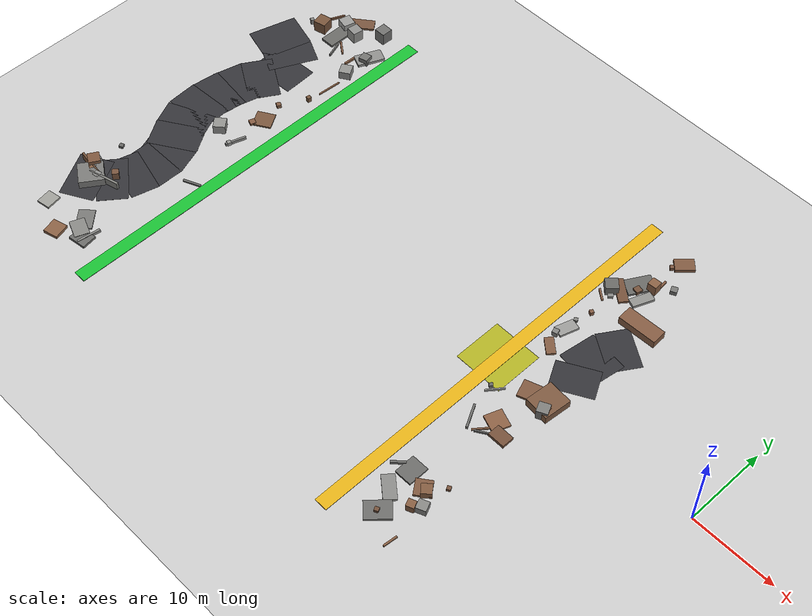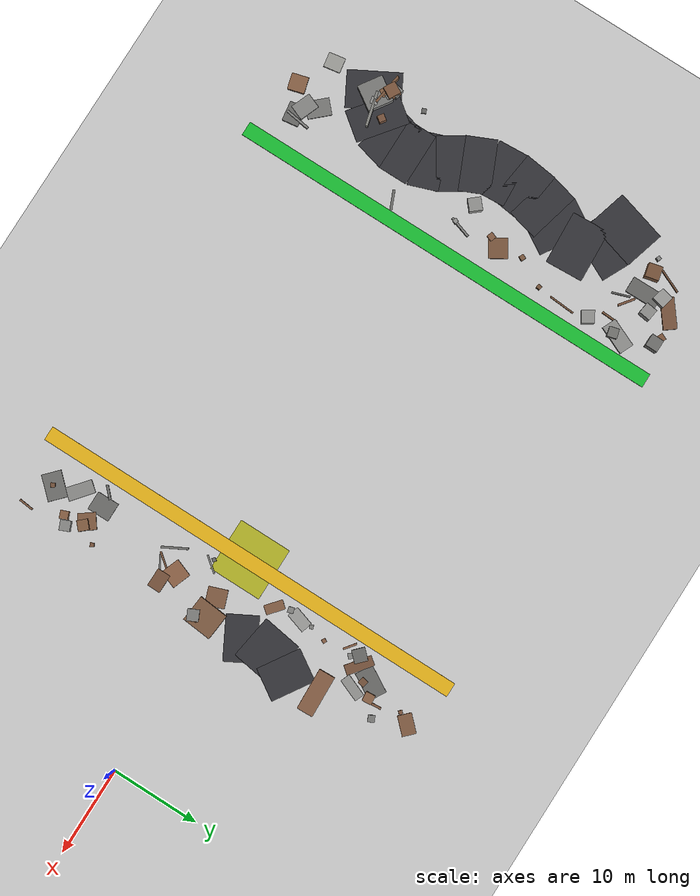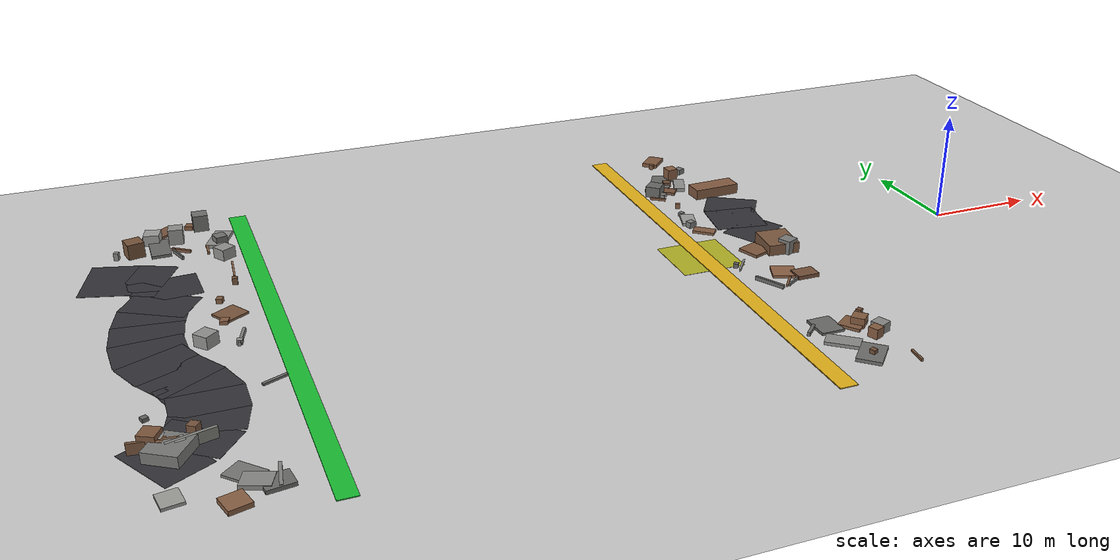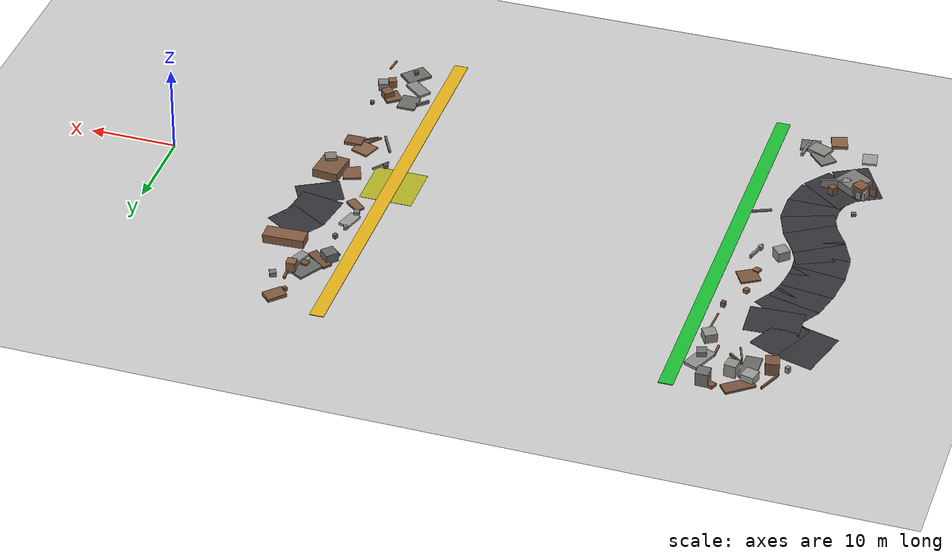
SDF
<sdf version="1.6">
 <world name="navitas_arena">
  <model name="ground_plane">
   <static>true</static>
   <link name="link">
    <collision name="collision">
     <geometry><plane><normal>0 0 1</normal><size>400 400</size></plane></geometry>
     <surface><friction><ode><mu>0.8</mu><mu2>0.8</mu2></ode></friction></surface>
    </collision>
    <visual name="visual">
     <cast_shadows>false</cast_shadows>
     <geometry><plane><normal>0 0 1</normal><size>400 400</size></plane></geometry>
     <material>
      <script><uri>file://media/materials/scripts/gazebo.material</uri><name>Gazebo/Grey</name></script>
     </material>
    </visual>
   </link>
  </model>
  <model name="launch">
   <static>true</static>
   <pose>-26.000 0.000 0.010 0 0 0.000</pose>
   <link name="link">
    <collision name="col"><geometry><box><size>6.000 6.000 0.020</size></box></geometry></collision>
    <visual name="vis">
     <geometry><box><size>6.000 6.000 0.020</size></box></geometry>
     <material><ambient>0.70 0.70 0.15 1</ambient><diffuse>0.70 0.70 0.15 1</diffuse></material>
    </visual>
   </link>
  </model>
  <model name="brd_kolay_E">
   <static>true</static>
   <pose>-64.200 0.000 0.040 0 0 0.000</pose>
   <link name="link">
    <collision name="col"><geometry><box><size>1.600 50.000 0.080</size></box></geometry></collision>
    <visual name="vis">
     <geometry><box><size>1.600 50.000 0.080</size></box></geometry>
     <material><ambient>0.10 0.75 0.20 1</ambient><diffuse>0.10 0.75 0.20 1</diffuse></material>
    </visual>
   </link>
  </model>
  <model name="road_kolay_3_7">
   <static>true</static>
   <pose>-74.937 -15.783 0.040 0 0 0.503</pose>
   <link name="link">
    <collision name="col"><geometry><box><size>4.146 6.000 0.020</size></box></geometry></collision>
    <visual name="vis">
     <geometry><box><size>4.146 6.000 0.020</size></box></geometry>
     <material><ambient>0.20 0.20 0.22 1</ambient><diffuse>0.20 0.20 0.22 1</diffuse></material>
    </visual>
   </link>
  </model>
  <model name="road_kolay_3_8">
   <static>true</static>
   <pose>-72.693 -13.926 0.040 0 0 0.917</pose>
   <link name="link">
    <collision name="col"><geometry><box><size>3.606 6.000 0.020</size></box></geometry></collision>
    <visual name="vis">
     <geometry><box><size>3.606 6.000 0.020</size></box></geometry>
     <material><ambient>0.20 0.20 0.22 1</ambient><diffuse>0.20 0.20 0.22 1</diffuse></material>
    </visual>
   </link>
  </model>
  <model name="road_kolay_3_9">
   <static>true</static>
   <pose>-71.559 -11.639 0.040 0 0 1.320</pose>
   <link name="link">
    <collision name="col"><geometry><box><size>3.404 6.000 0.020</size></box></geometry></collision>
    <visual name="vis">
     <geometry><box><size>3.404 6.000 0.020</size></box></geometry>
     <material><ambient>0.20 0.20 0.22 1</ambient><diffuse>0.20 0.20 0.22 1</diffuse></material>
    </visual>
   </link>
  </model>
  <model name="road_kolay_3_10">
   <static>true</static>
   <pose>-71.249 -9.213 0.040 0 0 1.572</pose>
   <link name="link">
    <collision name="col"><geometry><box><size>3.326 6.000 0.020</size></box></geometry></collision>
    <visual name="vis">
     <geometry><box><size>3.326 6.000 0.020</size></box></geometry>
     <material><ambient>0.20 0.20 0.22 1</ambient><diffuse>0.20 0.20 0.22 1</diffuse></material>
    </visual>
   </link>
  </model>
  <model name="road_kolay_3_11">
   <static>true</static>
   <pose>-71.670 -6.833 0.040 0 0 1.916</pose>
   <link name="link">
    <collision name="col"><geometry><box><size>3.380 6.000 0.020</size></box></geometry></collision>
    <visual name="vis">
     <geometry><box><size>3.380 6.000 0.020</size></box></geometry>
     <material><ambient>0.20 0.20 0.22 1</ambient><diffuse>0.20 0.20 0.22 1</diffuse></material>
    </visual>
   </link>
  </model>
  <model name="road_kolay_3_12">
   <static>true</static>
   <pose>-72.821 -4.500 0.040 0 0 2.131</pose>
   <link name="link">
    <collision name="col"><geometry><box><size>3.654 6.000 0.020</size></box></geometry></collision>
    <visual name="vis">
     <geometry><box><size>3.654 6.000 0.020</size></box></geometry>
     <material><ambient>0.20 0.20 0.22 1</ambient><diffuse>0.20 0.20 0.22 1</diffuse></material>
    </visual>
   </link>
  </model>
  <model name="road_kolay_3_13">
   <static>true</static>
   <pose>-74.075 -2.167 0.040 0 0 1.992</pose>
   <link name="link">
    <collision name="col"><geometry><box><size>3.457 6.000 0.020</size></box></geometry></collision>
    <visual name="vis">
     <geometry><box><size>3.457 6.000 0.020</size></box></geometry>
     <material><ambient>0.20 0.20 0.22 1</ambient><diffuse>0.20 0.20 0.22 1</diffuse></material>
    </visual>
   </link>
  </model>
  <model name="road_kolay_3_14">
   <static>true</static>
   <pose>-74.682 0.400 0.040 0 0 1.631</pose>
   <link name="link">
    <collision name="col"><geometry><box><size>3.705 6.000 0.020</size></box></geometry></collision>
    <visual name="vis">
     <geometry><box><size>3.705 6.000 0.020</size></box></geometry>
     <material><ambient>0.20 0.20 0.22 1</ambient><diffuse>0.20 0.20 0.22 1</diffuse></material>
    </visual>
   </link>
  </model>
  <model name="road_kolay_3_15">
   <static>true</static>
   <pose>-74.588 3.200 0.040 0 0 1.445</pose>
   <link name="link">
    <collision name="col"><geometry><box><size>3.722 6.000 0.020</size></box></geometry></collision>
    <visual name="vis">
     <geometry><box><size>3.722 6.000 0.020</size></box></geometry>
     <material><ambient>0.20 0.20 0.22 1</ambient><diffuse>0.20 0.20 0.22 1</diffuse></material>
    </visual>
   </link>
  </model>
  <model name="road_kolay_3_16">
   <static>true</static>
   <pose>-74.086 5.898 0.040 0 0 1.326</pose>
   <link name="link">
    <collision name="col"><geometry><box><size>3.575 6.000 0.020</size></box></geometry></collision>
    <visual name="vis">
     <geometry><box><size>3.575 6.000 0.020</size></box></geometry>
     <material><ambient>0.20 0.20 0.22 1</ambient><diffuse>0.20 0.20 0.22 1</diffuse></material>
    </visual>
   </link>
  </model>
  <model name="road_kolay_3_17">
   <static>true</static>
   <pose>-73.017 8.426 0.040 0 0 1.026</pose>
   <link name="link">
    <collision name="col"><geometry><box><size>3.776 6.000 0.020</size></box></geometry></collision>
    <visual name="vis">
     <geometry><box><size>3.776 6.000 0.020</size></box></geometry>
     <material><ambient>0.20 0.20 0.22 1</ambient><diffuse>0.20 0.20 0.22 1</diffuse></material>
    </visual>
   </link>
  </model>
  <model name="road_kolay_3_18">
   <static>true</static>
   <pose>-72.361 11.328 0.040 0 0 1.624</pose>
   <link name="link">
    <collision name="col"><geometry><box><size>4.248 6.000 0.020</size></box></geometry></collision>
    <visual name="vis">
     <geometry><box><size>4.248 6.000 0.020</size></box></geometry>
     <material><ambient>0.20 0.20 0.22 1</ambient><diffuse>0.20 0.20 0.22 1</diffuse></material>
    </visual>
   </link>
  </model>
  <model name="road_kolay_3_19">
   <static>true</static>
   <pose>-73.637 13.574 0.040 0 0 2.691</pose>
   <link name="link">
    <collision name="col"><geometry><box><size>3.538 6.000 0.020</size></box></geometry></collision>
    <visual name="vis">
     <geometry><box><size>3.538 6.000 0.020</size></box></geometry>
     <material><ambient>0.20 0.20 0.22 1</ambient><diffuse>0.20 0.20 0.22 1</diffuse></material>
    </visual>
   </link>
  </model>
  <model name="road_kolay_3_20">
   <static>true</static>
   <pose>-76.608 14.652 0.040 0 0 2.866</pose>
   <link name="link">
    <collision name="col"><geometry><box><size>4.607 6.000 0.020</size></box></geometry></collision>
    <visual name="vis">
     <geometry><box><size>4.607 6.000 0.020</size></box></geometry>
     <material><ambient>0.20 0.20 0.22 1</ambient><diffuse>0.20 0.20 0.22 1</diffuse></material>
    </visual>
   </link>
  </model>
  <model name="blk_kolay_3_0_0">
   <static>true</static>
   <pose>-73.838 -15.035 0.500 0 0 0.205</pose>
   <link name="link">
    <collision name="col"><geometry><box><size>0.788 0.788 1.000</size></box></geometry></collision>
    <visual name="vis">
     <geometry><box><size>0.788 0.788 1.000</size></box></geometry>
     <material><ambient>0.56 0.56 0.55 1</ambient><diffuse>0.56 0.56 0.55 1</diffuse></material>
    </visual>
   </link>
  </model>
  <model name="blk_kolay_3_0_1">
   <static>true</static>
   <pose>-72.996 -14.807 0.500 0 0 0.261</pose>
   <link name="link">
    <collision name="col"><geometry><box><size>3.860 0.278 1.000</size></box></geometry></collision>
    <visual name="vis">
     <geometry><box><size>3.860 0.278 1.000</size></box></geometry>
     <material><ambient>0.52 0.52 0.50 1</ambient><diffuse>0.52 0.52 0.50 1</diffuse></material>
    </visual>
   </link>
  </model>
  <model name="blk_kolay_3_0_2">
   <static>true</static>
   <pose>-75.254 -14.099 0.500 0 0 2.762</pose>
   <link name="link">
    <collision name="col"><geometry><box><size>0.913 0.913 1.000</size></box></geometry></collision>
    <visual name="vis">
     <geometry><box><size>0.913 0.913 1.000</size></box></geometry>
     <material><ambient>0.56 0.56 0.55 1</ambient><diffuse>0.56 0.56 0.55 1</diffuse></material>
    </visual>
   </link>
  </model>
  <model name="blk_kolay_3_0_3">
   <static>true</static>
   <pose>-75.709 -14.020 0.714 0 0 2.634</pose>
   <link name="link">
    <collision name="col"><geometry><box><size>1.386 1.386 1.427</size></box></geometry></collision>
    <visual name="vis">
     <geometry><box><size>1.386 1.386 1.427</size></box></geometry>
     <material><ambient>0.49 0.34 0.24 1</ambient><diffuse>0.49 0.34 0.24 1</diffuse></material>
    </visual>
   </link>
  </model>
  <model name="blk_kolay_3_0_4">
   <static>true</static>
   <pose>-75.965 -13.671 0.500 0 0 2.943</pose>
   <link name="link">
    <collision name="col"><geometry><box><size>1.092 1.092 1.000</size></box></geometry></collision>
    <visual name="vis">
     <geometry><box><size>1.092 1.092 1.000</size></box></geometry>
     <material><ambient>0.55 0.55 0.54 1</ambient><diffuse>0.55 0.55 0.54 1</diffuse></material>
    </visual>
   </link>
  </model>
  <model name="blk_kolay_3_0_5">
   <static>true</static>
   <pose>-75.603 -14.547 0.500 0 0 2.998</pose>
   <link name="link">
    <collision name="col"><geometry><box><size>3.623 0.254 1.000</size></box></geometry></collision>
    <visual name="vis">
     <geometry><box><size>3.623 0.254 1.000</size></box></geometry>
     <material><ambient>0.48 0.34 0.24 1</ambient><diffuse>0.48 0.34 0.24 1</diffuse></material>
    </visual>
   </link>
  </model>
  <model name="blk_kolay_3_0_6">
   <static>true</static>
   <pose>-72.684 -13.391 0.500 0 0 0.953</pose>
   <link name="link">
    <collision name="col"><geometry><box><size>0.763 0.763 1.000</size></box></geometry></collision>
    <visual name="vis">
     <geometry><box><size>0.763 0.763 1.000</size></box></geometry>
     <material><ambient>0.47 0.33 0.24 1</ambient><diffuse>0.47 0.33 0.24 1</diffuse></material>
    </visual>
   </link>
  </model>
  <model name="blk_kolay_3_0_7">
   <static>true</static>
   <pose>-75.221 -14.566 0.500 0 0 1.016</pose>
   <link name="link">
    <collision name="col"><geometry><box><size>0.922 0.922 1.000</size></box></geometry></collision>
    <visual name="vis">
     <geometry><box><size>0.922 0.922 1.000</size></box></geometry>
     <material><ambient>0.52 0.37 0.26 1</ambient><diffuse>0.52 0.37 0.26 1</diffuse></material>
    </visual>
   </link>
  </model>
  <model name="blk_kolay_3_0_8">
   <static>true</static>
   <pose>-74.566 -15.380 0.500 0 0 0.982</pose>
   <link name="link">
    <collision name="col"><geometry><box><size>2.954 2.875 1.000</size></box></geometry></collision>
    <visual name="vis">
     <geometry><box><size>2.954 2.875 1.000</size></box></geometry>
     <material><ambient>0.48 0.48 0.47 1</ambient><diffuse>0.48 0.48 0.47 1</diffuse></material>
    </visual>
   </link>
  </model>
  <model name="deb_kolay_5">
   <static>true</static>
   <pose>-74.207 19.503 0.728 0 0 1.801</pose>
   <link name="link">
    <collision name="col"><geometry><box><size>1.531 1.531 1.456</size></box></geometry></collision>
    <visual name="vis">
     <geometry><box><size>1.531 1.531 1.456</size></box></geometry>
     <material><ambient>0.47 0.33 0.23 1</ambient><diffuse>0.47 0.33 0.23 1</diffuse></material>
    </visual>
   </link>
  </model>
  <model name="deb_kolay_6">
   <static>true</static>
   <pose>-71.187 -22.927 0.197 0 0 0.267</pose>
   <link name="link">
    <collision name="col"><geometry><box><size>1.806 1.871 0.394</size></box></geometry></collision>
    <visual name="vis">
     <geometry><box><size>1.806 1.871 0.394</size></box></geometry>
     <material><ambient>0.54 0.38 0.27 1</ambient><diffuse>0.54 0.38 0.27 1</diffuse></material>
    </visual>
   </link>
  </model>
  <model name="deb_kolay_7">
   <static>true</static>
   <pose>-70.492 17.905 0.169 0 0 1.897</pose>
   <link name="link">
    <collision name="col"><geometry><box><size>2.029 0.163 0.337</size></box></geometry></collision>
    <visual name="vis">
     <geometry><box><size>2.029 0.163 0.337</size></box></geometry>
     <material><ambient>0.44 0.44 0.43 1</ambient><diffuse>0.44 0.44 0.43 1</diffuse></material>
    </visual>
   </link>
  </model>
  <model name="deb_kolay_8">
   <static>true</static>
   <pose>-68.208 7.054 0.217 0 0 1.133</pose>
   <link name="link">
    <collision name="col"><geometry><box><size>0.553 0.553 0.435</size></box></geometry></collision>
    <visual name="vis">
     <geometry><box><size>0.553 0.553 0.435</size></box></geometry>
     <material><ambient>0.49 0.35 0.25 1</ambient><diffuse>0.49 0.35 0.25 1</diffuse></material>
    </visual>
   </link>
  </model>
  <model name="deb_kolay_13">
   <static>true</static>
   <pose>-66.542 19.320 0.446 0 0 0.254</pose>
   <link name="link">
    <collision name="col"><geometry><box><size>1.090 1.090 0.893</size></box></geometry></collision>
    <visual name="vis">
     <geometry><box><size>1.090 1.090 0.893</size></box></geometry>
     <material><ambient>0.45 0.45 0.44 1</ambient><diffuse>0.45 0.45 0.44 1</diffuse></material>
    </visual>
   </link>
  </model>
  <model name="deb_kolay_18">
   <static>true</static>
   <pose>-68.824 23.923 0.188 0 0 1.166</pose>
   <link name="link">
    <collision name="col"><geometry><box><size>0.774 0.774 0.376</size></box></geometry></collision>
    <visual name="vis">
     <geometry><box><size>0.774 0.774 0.376</size></box></geometry>
     <material><ambient>0.49 0.34 0.24 1</ambient><diffuse>0.49 0.34 0.24 1</diffuse></material>
    </visual>
   </link>
  </model>
  <model name="deb_kolay_19">
   <static>true</static>
   <pose>-70.139 18.821 0.142 0 0 2.497</pose>
   <link name="link">
    <collision name="col"><geometry><box><size>1.940 0.228 0.285</size></box></geometry></collision>
    <visual name="vis">
     <geometry><box><size>1.940 0.228 0.285</size></box></geometry>
     <material><ambient>0.48 0.33 0.24 1</ambient><diffuse>0.48 0.33 0.24 1</diffuse></material>
    </visual>
   </link>
  </model>
  <model name="deb_kolay_20">
   <static>true</static>
   <pose>-67.888 -20.878 0.186 0 0 1.432</pose>
   <link name="link">
    <collision name="col"><geometry><box><size>2.813 0.264 0.373</size></box></geometry></collision>
    <visual name="vis">
     <geometry><box><size>2.813 0.264 0.373</size></box></geometry>
     <material><ambient>0.51 0.51 0.50 1</ambient><diffuse>0.51 0.51 0.50 1</diffuse></material>
    </visual>
   </link>
  </model>
  <model name="deb_kolay_21">
   <static>true</static>
   <pose>-71.966 19.873 0.139 0 0 1.580</pose>
   <link name="link">
    <collision name="col"><geometry><box><size>3.562 1.773 0.277</size></box></geometry></collision>
    <visual name="vis">
     <geometry><box><size>3.562 1.773 0.277</size></box></geometry>
     <material><ambient>0.41 0.41 0.40 1</ambient><diffuse>0.41 0.41 0.40 1</diffuse></material>
    </visual>
   </link>
  </model>
  <model name="deb_kolay_27">
   <static>true</static>
   <pose>-75.869 -10.089 0.157 0 0 0.392</pose>
   <link name="link">
    <collision name="col"><geometry><box><size>0.514 0.514 0.315</size></box></geometry></collision>
    <visual name="vis">
     <geometry><box><size>0.514 0.514 0.315</size></box></geometry>
     <material><ambient>0.40 0.40 0.39 1</ambient><diffuse>0.40 0.40 0.39 1</diffuse></material>
    </visual>
   </link>
  </model>
  <model name="deb_kolay_29">
   <static>true</static>
   <pose>-75.165 -20.884 0.119 0 0 1.736</pose>
   <link name="link">
    <collision name="col"><geometry><box><size>1.874 1.654 0.238</size></box></geometry></collision>
    <visual name="vis">
     <geometry><box><size>1.874 1.654 0.238</size></box></geometry>
     <material><ambient>0.62 0.62 0.60 1</ambient><diffuse>0.62 0.62 0.60 1</diffuse></material>
    </visual>
   </link>
  </model>
  <model name="deb_kolay_36">
   <static>true</static>
   <pose>-66.058 -7.818 0.098 0 0 0.410</pose>
   <link name="link">
    <collision name="col"><geometry><box><size>2.199 0.276 0.196</size></box></geometry></collision>
    <visual name="vis">
     <geometry><box><size>2.199 0.276 0.196</size></box></geometry>
     <material><ambient>0.42 0.42 0.41 1</ambient><diffuse>0.42 0.42 0.41 1</diffuse></material>
    </visual>
   </link>
  </model>
  <model name="deb_kolay_38">
   <static>true</static>
   <pose>-70.206 -0.154 0.564 0 0 2.281</pose>
   <link name="link">
    <collision name="col"><geometry><box><size>1.434 1.434 1.127</size></box></geometry></collision>
    <visual name="vis">
     <geometry><box><size>1.434 1.434 1.127</size></box></geometry>
     <material><ambient>0.57 0.57 0.56 1</ambient><diffuse>0.57 0.57 0.56 1</diffuse></material>
    </visual>
   </link>
  </model>
  <model name="deb_kolay_43">
   <static>true</static>
   <pose>-71.504 23.188 0.131 0 0 0.661</pose>
   <link name="link">
    <collision name="col"><geometry><box><size>3.464 1.496 0.263</size></box></geometry></collision>
    <visual name="vis">
     <geometry><box><size>3.464 1.496 0.263</size></box></geometry>
     <material><ambient>0.47 0.33 0.24 1</ambient><diffuse>0.47 0.33 0.24 1</diffuse></material>
    </visual>
   </link>
  </model>
  <model name="deb_kolay_46">
   <static>true</static>
   <pose>-66.539 19.964 0.170 0 0 1.161</pose>
   <link name="link">
    <collision name="col"><geometry><box><size>3.317 1.645 0.341</size></box></geometry></collision>
    <visual name="vis">
     <geometry><box><size>3.317 1.645 0.341</size></box></geometry>
     <material><ambient>0.56 0.56 0.55 1</ambient><diffuse>0.56 0.56 0.55 1</diffuse></material>
    </visual>
   </link>
  </model>
  <model name="deb_kolay_49">
   <static>true</static>
   <pose>-67.830 18.134 0.146 0 0 1.523</pose>
   <link name="link">
    <collision name="col"><geometry><box><size>1.780 0.207 0.292</size></box></geometry></collision>
    <visual name="vis">
     <geometry><box><size>1.780 0.207 0.292</size></box></geometry>
     <material><ambient>0.51 0.36 0.25 1</ambient><diffuse>0.51 0.36 0.25 1</diffuse></material>
    </visual>
   </link>
  </model>
  <model name="deb_kolay_53">
   <static>true</static>
   <pose>-67.701 -0.969 0.223 0 0 2.846</pose>
   <link name="link">
    <collision name="col"><geometry><box><size>0.471 0.471 0.447</size></box></geometry></collision>
    <visual name="vis">
     <geometry><box><size>0.471 0.471 0.447</size></box></geometry>
     <material><ambient>0.57 0.57 0.56 1</ambient><diffuse>0.57 0.57 0.56 1</diffuse></material>
    </visual>
   </link>
  </model>
  <model name="deb_kolay_57">
   <static>true</static>
   <pose>-67.423 -0.211 0.193 0 0 1.261</pose>
   <link name="link">
    <collision name="col"><geometry><box><size>2.528 0.246 0.386</size></box></geometry></collision>
    <visual name="vis">
     <geometry><box><size>2.528 0.246 0.386</size></box></geometry>
     <material><ambient>0.50 0.50 0.49 1</ambient><diffuse>0.50 0.50 0.49 1</diffuse></material>
    </visual>
   </link>
  </model>
  <model name="deb_kolay_71">
   <static>true</static>
   <pose>-66.481 10.207 0.315 0 0 1.411</pose>
   <link name="link">
    <collision name="col"><geometry><box><size>0.471 0.471 0.630</size></box></geometry></collision>
    <visual name="vis">
     <geometry><box><size>0.471 0.471 0.630</size></box></geometry>
     <material><ambient>0.46 0.33 0.23 1</ambient><diffuse>0.46 0.33 0.23 1</diffuse></material>
    </visual>
   </link>
  </model>
  <model name="deb_kolay_74">
   <static>true</static>
   <pose>-67.827 23.547 0.791 0 0 3.130</pose>
   <link name="link">
    <collision name="col"><geometry><box><size>1.396 1.396 1.581</size></box></geometry></collision>
    <visual name="vis">
     <geometry><box><size>1.396 1.396 1.581</size></box></geometry>
     <material><ambient>0.44 0.44 0.43 1</ambient><diffuse>0.44 0.44 0.43 1</diffuse></material>
    </visual>
   </link>
  </model>
  <model name="deb_kolay_77">
   <static>true</static>
   <pose>-66.548 16.197 0.522 0 0 2.125</pose>
   <link name="link">
    <collision name="col"><geometry><box><size>1.394 1.394 1.045</size></box></geometry></collision>
    <visual name="vis">
     <geometry><box><size>1.394 1.394 1.045</size></box></geometry>
     <material><ambient>0.57 0.57 0.56 1</ambient><diffuse>0.57 0.57 0.56 1</diffuse></material>
    </visual>
   </link>
  </model>
  <model name="deb_kolay_78">
   <static>true</static>
   <pose>-70.305 21.223 0.738 0 0 1.436</pose>
   <link name="link">
    <collision name="col"><geometry><box><size>1.316 1.316 1.476</size></box></geometry></collision>
    <visual name="vis">
     <geometry><box><size>1.316 1.316 1.476</size></box></geometry>
     <material><ambient>0.56 0.56 0.55 1</ambient><diffuse>0.56 0.56 0.55 1</diffuse></material>
    </visual>
   </link>
  </model>
  <model name="deb_kolay_81">
   <static>true</static>
   <pose>-67.722 4.360 0.104 0 0 0.545</pose>
   <link name="link">
    <collision name="col"><geometry><box><size>2.228 2.088 0.209</size></box></geometry></collision>
    <visual name="vis">
     <geometry><box><size>2.228 2.088 0.209</size></box></geometry>
     <material><ambient>0.48 0.34 0.24 1</ambient><diffuse>0.48 0.34 0.24 1</diffuse></material>
    </visual>
   </link>
  </model>
  <model name="deb_kolay_82">
   <static>true</static>
   <pose>-68.351 3.120 0.157 0 0 1.221</pose>
   <link name="link">
    <collision name="col"><geometry><box><size>0.717 0.717 0.315</size></box></geometry></collision>
    <visual name="vis">
     <geometry><box><size>0.717 0.717 0.315</size></box></geometry>
     <material><ambient>0.52 0.36 0.26 1</ambient><diffuse>0.52 0.36 0.26 1</diffuse></material>
    </visual>
   </link>
  </model>
  <model name="deb_kolay_87">
   <static>true</static>
   <pose>-70.098 -19.684 0.105 0 0 2.315</pose>
   <link name="link">
    <collision name="col"><geometry><box><size>2.614 1.897 0.211</size></box></geometry></collision>
    <visual name="vis">
     <geometry><box><size>2.614 1.897 0.211</size></box></geometry>
     <material><ambient>0.47 0.47 0.46 1</ambient><diffuse>0.47 0.47 0.46 1</diffuse></material>
    </visual>
   </link>
  </model>
  <model name="deb_kolay_92">
   <static>true</static>
   <pose>-74.462 21.505 0.137 0 0 1.155</pose>
   <link name="link">
    <collision name="col"><geometry><box><size>2.868 0.192 0.274</size></box></geometry></collision>
    <visual name="vis">
     <geometry><box><size>2.868 0.192 0.274</size></box></geometry>
     <material><ambient>0.46 0.32 0.23 1</ambient><diffuse>0.46 0.32 0.23 1</diffuse></material>
    </visual>
   </link>
  </model>
  <model name="deb_kolay_101">
   <static>true</static>
   <pose>-75.808 19.217 0.341 0 0 2.766</pose>
   <link name="link">
    <collision name="col"><geometry><box><size>0.438 0.438 0.683</size></box></geometry></collision>
    <visual name="vis">
     <geometry><box><size>0.438 0.438 0.683</size></box></geometry>
     <material><ambient>0.53 0.53 0.52 1</ambient><diffuse>0.53 0.53 0.52 1</diffuse></material>
    </visual>
   </link>
  </model>
  <model name="deb_kolay_102">
   <static>true</static>
   <pose>-68.207 -21.526 0.159 0 0 0.138</pose>
   <link name="link">
    <collision name="col"><geometry><box><size>2.215 1.824 0.319</size></box></geometry></collision>
    <visual name="vis">
     <geometry><box><size>2.215 1.824 0.319</size></box></geometry>
     <material><ambient>0.42 0.42 0.41 1</ambient><diffuse>0.42 0.42 0.41 1</diffuse></material>
    </visual>
   </link>
  </model>
  <model name="deb_kolay_104">
   <static>true</static>
   <pose>-72.403 21.788 0.518 0 0 2.900</pose>
   <link name="link">
    <collision name="col"><geometry><box><size>1.461 1.461 1.037</size></box></geometry></collision>
    <visual name="vis">
     <geometry><box><size>1.461 1.461 1.037</size></box></geometry>
     <material><ambient>0.61 0.61 0.60 1</ambient><diffuse>0.61 0.61 0.60 1</diffuse></material>
    </visual>
   </link>
  </model>
  <model name="deb_kolay_109">
   <static>true</static>
   <pose>-66.234 13.218 0.082 0 0 1.502</pose>
   <link name="link">
    <collision name="col"><geometry><box><size>2.969 0.167 0.164</size></box></geometry></collision>
    <visual name="vis">
     <geometry><box><size>2.969 0.167 0.164</size></box></geometry>
     <material><ambient>0.54 0.38 0.27 1</ambient><diffuse>0.54 0.38 0.27 1</diffuse></material>
    </visual>
   </link>
  </model>
  <model name="deb_kolay_113">
   <static>true</static>
   <pose>-69.459 -20.953 0.188 0 0 2.765</pose>
   <link name="link">
    <collision name="col"><geometry><box><size>2.299 1.735 0.376</size></box></geometry></collision>
    <visual name="vis">
     <geometry><box><size>2.299 1.735 0.376</size></box></geometry>
     <material><ambient>0.53 0.53 0.52 1</ambient><diffuse>0.53 0.53 0.52 1</diffuse></material>
    </visual>
   </link>
  </model>
  <model name="brd_orta_W">
   <static>true</static>
   <pose>-25.800 0.000 0.040 0 0 0.000</pose>
   <link name="link">
    <collision name="col"><geometry><box><size>1.600 50.000 0.080</size></box></geometry></collision>
    <visual name="vis">
     <geometry><box><size>1.600 50.000 0.080</size></box></geometry>
     <material><ambient>0.90 0.70 0.10 1</ambient><diffuse>0.90 0.70 0.10 1</diffuse></material>
    </visual>
   </link>
  </model>
  <model name="road_orta_1_12">
   <static>true</static>
   <pose>-18.578 3.667 0.040 0 0 2.070</pose>
   <link name="link">
    <collision name="col"><geometry><box><size>3.557 5.000 0.020</size></box></geometry></collision>
    <visual name="vis">
     <geometry><box><size>3.557 5.000 0.020</size></box></geometry>
     <material><ambient>0.20 0.20 0.22 1</ambient><diffuse>0.20 0.20 0.22 1</diffuse></material>
    </visual>
   </link>
  </model>
  <model name="road_orta_1_13">
   <static>true</static>
   <pose>-18.942 6.630 0.040 0 0 1.421</pose>
   <link name="link">
    <collision name="col"><geometry><box><size>4.533 5.000 0.020</size></box></geometry></collision>
    <visual name="vis">
     <geometry><box><size>4.533 5.000 0.020</size></box></geometry>
     <material><ambient>0.20 0.20 0.22 1</ambient><diffuse>0.20 0.20 0.22 1</diffuse></material>
    </visual>
   </link>
  </model>
  <model name="road_orta_1_14">
   <static>true</static>
   <pose>-17.895 9.639 0.040 0 0 1.002</pose>
   <link name="link">
    <collision name="col"><geometry><box><size>3.780 5.000 0.020</size></box></geometry></collision>
    <visual name="vis">
     <geometry><box><size>3.780 5.000 0.020</size></box></geometry>
     <material><ambient>0.20 0.20 0.22 1</ambient><diffuse>0.20 0.20 0.22 1</diffuse></material>
    </visual>
   </link>
  </model>
  <model name="blk_orta_1_1_0">
   <static>true</static>
   <pose>-17.917 -1.648 0.500 0 0 1.641</pose>
   <link name="link">
    <collision name="col"><geometry><box><size>0.950 0.950 1.000</size></box></geometry></collision>
    <visual name="vis">
     <geometry><box><size>0.950 0.950 1.000</size></box></geometry>
     <material><ambient>0.47 0.33 0.23 1</ambient><diffuse>0.47 0.33 0.23 1</diffuse></material>
    </visual>
   </link>
  </model>
  <model name="blk_orta_1_1_2">
   <static>true</static>
   <pose>-17.980 -1.827 0.658 0 0 2.017</pose>
   <link name="link">
    <collision name="col"><geometry><box><size>1.278 1.278 1.316</size></box></geometry></collision>
    <visual name="vis">
     <geometry><box><size>1.278 1.278 1.316</size></box></geometry>
     <material><ambient>0.49 0.49 0.48 1</ambient><diffuse>0.49 0.49 0.48 1</diffuse></material>
    </visual>
   </link>
  </model>
  <model name="blk_orta_1_1_5">
   <static>true</static>
   <pose>-18.408 -0.643 0.500 0 0 1.478</pose>
   <link name="link">
    <collision name="col"><geometry><box><size>3.350 2.975 1.000</size></box></geometry></collision>
    <visual name="vis">
     <geometry><box><size>3.350 2.975 1.000</size></box></geometry>
     <material><ambient>0.49 0.35 0.25 1</ambient><diffuse>0.49 0.35 0.25 1</diffuse></material>
    </visual>
   </link>
  </model>
  <model name="blk_orta_1_2_3">
   <static>true</static>
   <pose>-18.047 13.283 0.500 0 0 0.040</pose>
   <link name="link">
    <collision name="col"><geometry><box><size>4.666 1.830 1.000</size></box></geometry></collision>
    <visual name="vis">
     <geometry><box><size>4.666 1.830 1.000</size></box></geometry>
     <material><ambient>0.52 0.36 0.26 1</ambient><diffuse>0.52 0.36 0.26 1</diffuse></material>
    </visual>
   </link>
  </model>
  <model name="deb_orta_1">
   <static>true</static>
   <pose>-19.046 -6.836 0.182 0 0 3.137</pose>
   <link name="link">
    <collision name="col"><geometry><box><size>2.072 1.485 0.363</size></box></geometry></collision>
    <visual name="vis">
     <geometry><box><size>2.072 1.485 0.363</size></box></geometry>
     <material><ambient>0.46 0.32 0.23 1</ambient><diffuse>0.46 0.32 0.23 1</diffuse></material>
    </visual>
   </link>
  </model>
  <model name="deb_orta_2">
   <static>true</static>
   <pose>-20.847 -7.266 0.096 0 0 0.897</pose>
   <link name="link">
    <collision name="col"><geometry><box><size>2.711 0.184 0.191</size></box></geometry></collision>
    <visual name="vis">
     <geometry><box><size>2.711 0.184 0.191</size></box></geometry>
     <material><ambient>0.50 0.35 0.25 1</ambient><diffuse>0.50 0.35 0.25 1</diffuse></material>
    </visual>
   </link>
  </model>
  <model name="deb_orta_3">
   <static>true</static>
   <pose>-23.198 14.287 0.165 0 0 2.257</pose>
   <link name="link">
    <collision name="col"><geometry><box><size>0.589 0.589 0.329</size></box></geometry></collision>
    <visual name="vis">
     <geometry><box><size>0.589 0.589 0.329</size></box></geometry>
     <material><ambient>0.52 0.52 0.51 1</ambient><diffuse>0.52 0.52 0.51 1</diffuse></material>
    </visual>
   </link>
  </model>
  <model name="deb_orta_10">
   <static>true</static>
   <pose>-22.557 -18.888 0.144 0 0 2.458</pose>
   <link name="link">
    <collision name="col"><geometry><box><size>2.915 1.461 0.289</size></box></geometry></collision>
    <visual name="vis">
     <geometry><box><size>2.915 1.461 0.289</size></box></geometry>
     <material><ambient>0.54 0.54 0.53 1</ambient><diffuse>0.54 0.54 0.53 1</diffuse></material>
    </visual>
   </link>
  </model>
  <model name="deb_orta_22">
   <static>true</static>
   <pose>-20.335 23.032 0.200 0 0 0.799</pose>
   <link name="link">
    <collision name="col"><geometry><box><size>2.226 1.541 0.399</size></box></geometry></collision>
    <visual name="vis">
     <geometry><box><size>2.226 1.541 0.399</size></box></geometry>
     <material><ambient>0.50 0.35 0.25 1</ambient><diffuse>0.50 0.35 0.25 1</diffuse></material>
    </visual>
   </link>
  </model>
  <model name="deb_orta_23">
   <static>true</static>
   <pose>-19.653 -16.620 0.434 0 0 0.740</pose>
   <link name="link">
    <collision name="col"><geometry><box><size>1.181 1.181 0.868</size></box></geometry></collision>
    <visual name="vis">
     <geometry><box><size>1.181 1.181 0.868</size></box></geometry>
     <material><ambient>0.51 0.36 0.25 1</ambient><diffuse>0.51 0.36 0.25 1</diffuse></material>
    </visual>
   </link>
  </model>
  <model name="deb_orta_26">
   <static>true</static>
   <pose>-23.763 15.032 0.550 0 0 0.805</pose>
   <link name="link">
    <collision name="col"><geometry><box><size>1.460 1.460 1.100</size></box></geometry></collision>
    <visual name="vis">
     <geometry><box><size>1.460 1.460 1.100</size></box></geometry>
     <material><ambient>0.41 0.41 0.40 1</ambient><diffuse>0.41 0.41 0.40 1</diffuse></material>
    </visual>
   </link>
  </model>
  <model name="deb_orta_27">
   <static>true</static>
   <pose>-23.524 7.770 0.141 0 0 1.270</pose>
   <link name="link">
    <collision name="col"><geometry><box><size>2.291 1.314 0.283</size></box></geometry></collision>
    <visual name="vis">
     <geometry><box><size>2.291 1.314 0.283</size></box></geometry>
     <material><ambient>0.61 0.61 0.60 1</ambient><diffuse>0.61 0.61 0.60 1</diffuse></material>
    </visual>
   </link>
  </model>
  <model name="deb_orta_29">
   <static>true</static>
   <pose>-20.556 18.187 0.662 0 0 1.650</pose>
   <link name="link">
    <collision name="col"><geometry><box><size>1.052 1.052 1.324</size></box></geometry></collision>
    <visual name="vis">
     <geometry><box><size>1.052 1.052 1.324</size></box></geometry>
     <material><ambient>0.54 0.38 0.27 1</ambient><diffuse>0.54 0.38 0.27 1</diffuse></material>
    </visual>
   </link>
  </model>
  <model name="deb_orta_31">
   <static>true</static>
   <pose>-18.884 19.571 0.269 0 0 2.016</pose>
   <link name="link">
    <collision name="col"><geometry><box><size>0.742 0.742 0.539</size></box></geometry></collision>
    <visual name="vis">
     <geometry><box><size>0.742 0.742 0.539</size></box></geometry>
     <material><ambient>0.47 0.47 0.46 1</ambient><diffuse>0.47 0.47 0.46 1</diffuse></material>
    </visual>
   </link>
  </model>
  <model name="deb_orta_34">
   <static>true</static>
   <pose>-20.501 16.197 0.174 0 0 1.192</pose>
   <link name="link">
    <collision name="col"><geometry><box><size>2.596 1.090 0.347</size></box></geometry></collision>
    <visual name="vis">
     <geometry><box><size>2.596 1.090 0.347</size></box></geometry>
     <material><ambient>0.57 0.57 0.56 1</ambient><diffuse>0.57 0.57 0.56 1</diffuse></material>
    </visual>
   </link>
  </model>
  <model name="deb_orta_57">
   <static>true</static>
   <pose>-21.060 21.797 0.238 0 0 2.379</pose>
   <link name="link">
    <collision name="col"><geometry><box><size>0.424 0.424 0.476</size></box></geometry></collision>
    <visual name="vis">
     <geometry><box><size>0.424 0.424 0.476</size></box></geometry>
     <material><ambient>0.48 0.33 0.24 1</ambient><diffuse>0.48 0.33 0.24 1</diffuse></material>
    </visual>
   </link>
  </model>
  <model name="deb_orta_63">
   <static>true</static>
   <pose>-21.496 -21.428 0.152 0 0 0.826</pose>
   <link name="link">
    <collision name="col"><geometry><box><size>2.914 2.130 0.304</size></box></geometry></collision>
    <visual name="vis">
     <geometry><box><size>2.914 2.130 0.304</size></box></geometry>
     <material><ambient>0.43 0.43 0.42 1</ambient><diffuse>0.43 0.43 0.42 1</diffuse></material>
    </visual>
   </link>
  </model>
  <model name="deb_orta_67">
   <static>true</static>
   <pose>-20.596 -5.741 0.111 0 0 1.218</pose>
   <link name="link">
    <collision name="col"><geometry><box><size>2.088 2.165 0.222</size></box></geometry></collision>
    <visual name="vis">
     <geometry><box><size>2.088 2.165 0.222</size></box></geometry>
     <material><ambient>0.55 0.38 0.27 1</ambient><diffuse>0.55 0.38 0.27 1</diffuse></material>
    </visual>
   </link>
  </model>
  <model name="deb_orta_72">
   <static>true</static>
   <pose>-23.541 9.200 0.194 0 0 0.468</pose>
   <link name="link">
    <collision name="col"><geometry><box><size>0.439 0.439 0.388</size></box></geometry></collision>
    <visual name="vis">
     <geometry><box><size>0.439 0.439 0.388</size></box></geometry>
     <material><ambient>0.49 0.49 0.48 1</ambient><diffuse>0.49 0.49 0.48 1</diffuse></material>
    </visual>
   </link>
  </model>
  <model name="deb_orta_73">
   <static>true</static>
   <pose>-20.224 19.100 0.177 0 0 1.648</pose>
   <link name="link">
    <collision name="col"><geometry><box><size>1.524 0.244 0.354</size></box></geometry></collision>
    <visual name="vis">
     <geometry><box><size>1.524 0.244 0.354</size></box></geometry>
     <material><ambient>0.51 0.35 0.25 1</ambient><diffuse>0.51 0.35 0.25 1</diffuse></material>
    </visual>
   </link>
  </model>
  <model name="deb_orta_76">
   <static>true</static>
   <pose>-20.186 -16.516 0.132 0 0 0.639</pose>
   <link name="link">
    <collision name="col"><geometry><box><size>1.855 1.921 0.265</size></box></geometry></collision>
    <visual name="vis">
     <geometry><box><size>1.855 1.921 0.265</size></box></geometry>
     <material><ambient>0.50 0.35 0.25 1</ambient><diffuse>0.50 0.35 0.25 1</diffuse></material>
    </visual>
   </link>
  </model>
  <model name="deb_orta_81">
   <static>true</static>
   <pose>-23.994 13.684 0.116 0 0 2.493</pose>
   <link name="link">
    <collision name="col"><geometry><box><size>1.527 0.217 0.233</size></box></geometry></collision>
    <visual name="vis">
     <geometry><box><size>1.527 0.217 0.233</size></box></geometry>
     <material><ambient>0.52 0.36 0.26 1</ambient><diffuse>0.52 0.36 0.26 1</diffuse></material>
    </visual>
   </link>
  </model>
  <model name="deb_orta_89">
   <static>true</static>
   <pose>-21.480 -21.576 0.323 0 0 0.428</pose>
   <link name="link">
    <collision name="col"><geometry><box><size>0.488 0.488 0.647</size></box></geometry></collision>
    <visual name="vis">
     <geometry><box><size>0.488 0.488 0.647</size></box></geometry>
     <material><ambient>0.45 0.32 0.23 1</ambient><diffuse>0.45 0.32 0.23 1</diffuse></material>
    </visual>
   </link>
  </model>
  <model name="deb_orta_91">
   <static>true</static>
   <pose>-18.252 -22.878 0.098 0 0 1.466</pose>
   <link name="link">
    <collision name="col"><geometry><box><size>1.657 0.198 0.197</size></box></geometry></collision>
    <visual name="vis">
     <geometry><box><size>1.657 0.198 0.197</size></box></geometry>
     <material><ambient>0.54 0.38 0.27 1</ambient><diffuse>0.54 0.38 0.27 1</diffuse></material>
    </visual>
   </link>
  </model>
  <model name="deb_orta_99">
   <static>true</static>
   <pose>-23.391 -3.175 0.125 0 0 0.912</pose>
   <link name="link">
    <collision name="col"><geometry><box><size>2.141 0.155 0.250</size></box></geometry></collision>
    <visual name="vis">
     <geometry><box><size>2.141 0.155 0.250</size></box></geometry>
     <material><ambient>0.58 0.58 0.57 1</ambient><diffuse>0.58 0.58 0.57 1</diffuse></material>
    </visual>
   </link>
  </model>
  <model name="deb_orta_101">
   <static>true</static>
   <pose>-21.608 16.844 0.227 0 0 1.325</pose>
   <link name="link">
    <collision name="col"><geometry><box><size>0.771 0.771 0.454</size></box></geometry></collision>
    <visual name="vis">
     <geometry><box><size>0.771 0.771 0.454</size></box></geometry>
     <material><ambient>0.45 0.32 0.23 1</ambient><diffuse>0.45 0.32 0.23 1</diffuse></material>
    </visual>
   </link>
  </model>
  <model name="deb_orta_110">
   <static>true</static>
   <pose>-22.813 -7.286 0.177 0 0 2.063</pose>
   <link name="link">
    <collision name="col"><geometry><box><size>2.889 0.233 0.354</size></box></geometry></collision>
    <visual name="vis">
     <geometry><box><size>2.889 0.233 0.354</size></box></geometry>
     <material><ambient>0.42 0.42 0.41 1</ambient><diffuse>0.42 0.42 0.41 1</diffuse></material>
    </visual>
   </link>
  </model>
  <model name="deb_orta_117">
   <static>true</static>
   <pose>-18.426 -14.761 0.171 0 0 2.083</pose>
   <link name="link">
    <collision name="col"><geometry><box><size>0.457 0.457 0.342</size></box></geometry></collision>
    <visual name="vis">
     <geometry><box><size>0.457 0.457 0.342</size></box></geometry>
     <material><ambient>0.46 0.32 0.23 1</ambient><diffuse>0.46 0.32 0.23 1</diffuse></material>
    </visual>
   </link>
  </model>
  <model name="deb_orta_118">
   <static>true</static>
   <pose>-20.425 -7.615 0.131 0 0 0.558</pose>
   <link name="link">
    <collision name="col"><geometry><box><size>2.323 0.162 0.261</size></box></geometry></collision>
    <visual name="vis">
     <geometry><box><size>2.323 0.162 0.261</size></box></geometry>
     <material><ambient>0.43 0.43 0.42 1</ambient><diffuse>0.43 0.43 0.42 1</diffuse></material>
    </visual>
   </link>
  </model>
  <model name="deb_orta_129">
   <static>true</static>
   <pose>-22.422 -15.955 0.111 0 0 1.578</pose>
   <link name="link">
    <collision name="col"><geometry><box><size>2.503 2.097 0.222</size></box></geometry></collision>
    <visual name="vis">
     <geometry><box><size>2.503 2.097 0.222</size></box></geometry>
     <material><ambient>0.42 0.42 0.41 1</ambient><diffuse>0.42 0.42 0.41 1</diffuse></material>
    </visual>
   </link>
  </model>
  <model name="deb_orta_138">
   <static>true</static>
   <pose>-23.035 11.105 0.247 0 0 1.086</pose>
   <link name="link">
    <collision name="col"><geometry><box><size>0.436 0.436 0.494</size></box></geometry></collision>
    <visual name="vis">
     <geometry><box><size>0.436 0.436 0.494</size></box></geometry>
     <material><ambient>0.52 0.36 0.26 1</ambient><diffuse>0.52 0.36 0.26 1</diffuse></material>
    </visual>
   </link>
  </model>
  <model name="deb_orta_143">
   <static>true</static>
   <pose>-22.844 15.559 0.139 0 0 2.487</pose>
   <link name="link">
    <collision name="col"><geometry><box><size>3.075 1.123 0.278</size></box></geometry></collision>
    <visual name="vis">
     <geometry><box><size>3.075 1.123 0.278</size></box></geometry>
     <material><ambient>0.46 0.32 0.23 1</ambient><diffuse>0.46 0.32 0.23 1</diffuse></material>
    </visual>
   </link>
  </model>
  <model name="deb_orta_144">
   <static>true</static>
   <pose>-23.886 6.452 0.302 0 0 1.829</pose>
   <link name="link">
    <collision name="col"><geometry><box><size>0.633 0.633 0.603</size></box></geometry></collision>
    <visual name="vis">
     <geometry><box><size>0.633 0.633 0.603</size></box></geometry>
     <material><ambient>0.51 0.51 0.50 1</ambient><diffuse>0.51 0.51 0.50 1</diffuse></material>
    </visual>
   </link>
  </model>
  <model name="deb_orta_151">
   <static>true</static>
   <pose>-21.952 17.558 0.129 0 0 1.047</pose>
   <link name="link">
    <collision name="col"><geometry><box><size>3.171 2.020 0.259</size></box></geometry></collision>
    <visual name="vis">
     <geometry><box><size>3.171 2.020 0.259</size></box></geometry>
     <material><ambient>0.41 0.41 0.40 1</ambient><diffuse>0.41 0.41 0.40 1</diffuse></material>
    </visual>
   </link>
  </model>
  <model name="deb_orta_152">
   <static>true</static>
   <pose>-23.192 4.854 0.125 0 0 2.440</pose>
   <link name="link">
    <collision name="col"><geometry><box><size>2.094 1.047 0.250</size></box></geometry></collision>
    <visual name="vis">
     <geometry><box><size>2.094 1.047 0.250</size></box></geometry>
     <material><ambient>0.51 0.36 0.26 1</ambient><diffuse>0.51 0.36 0.26 1</diffuse></material>
    </visual>
   </link>
  </model>
  <model name="deb_orta_157">
   <static>true</static>
   <pose>-23.980 -16.286 0.167 0 0 0.769</pose>
   <link name="link">
    <collision name="col"><geometry><box><size>1.593 0.265 0.334</size></box></geometry></collision>
    <visual name="vis">
     <geometry><box><size>1.593 0.265 0.334</size></box></geometry>
     <material><ambient>0.42 0.42 0.41 1</ambient><diffuse>0.42 0.42 0.41 1</diffuse></material>
    </visual>
   </link>
  </model>
  <model name="deb_orta_158">
   <static>true</static>
   <pose>-19.501 -18.855 0.453 0 0 0.392</pose>
   <link name="link">
    <collision name="col"><geometry><box><size>0.908 0.908 0.905</size></box></geometry></collision>
    <visual name="vis">
     <geometry><box><size>0.908 0.908 0.905</size></box></geometry>
     <material><ambient>0.53 0.37 0.26 1</ambient><diffuse>0.53 0.37 0.26 1</diffuse></material>
    </visual>
   </link>
  </model>
  <model name="deb_orta_164">
   <static>true</static>
   <pose>-23.980 -3.152 0.211 0 0 2.449</pose>
   <link name="link">
    <collision name="col"><geometry><box><size>0.422 0.422 0.422</size></box></geometry></collision>
    <visual name="vis">
     <geometry><box><size>0.422 0.422 0.422</size></box></geometry>
     <material><ambient>0.40 0.40 0.39 1</ambient><diffuse>0.40 0.40 0.39 1</diffuse></material>
    </visual>
   </link>
  </model>
  <model name="deb_orta_167">
   <static>true</static>
   <pose>-20.789 -0.807 0.136 0 0 0.347</pose>
   <link name="link">
    <collision name="col"><geometry><box><size>2.021 2.132 0.272</size></box></geometry></collision>
    <visual name="vis">
     <geometry><box><size>2.021 2.132 0.272</size></box></geometry>
     <material><ambient>0.50 0.35 0.25 1</ambient><diffuse>0.50 0.35 0.25 1</diffuse></material>
    </visual>
   </link>
  </model>
  <model name="deb_orta_169">
   <static>true</static>
   <pose>-18.625 -18.170 0.443 0 0 0.398</pose>
   <link name="link">
    <collision name="col"><geometry><box><size>1.144 1.144 0.886</size></box></geometry></collision>
    <visual name="vis">
     <geometry><box><size>1.144 1.144 0.886</size></box></geometry>
     <material><ambient>0.53 0.53 0.52 1</ambient><diffuse>0.53 0.53 0.52 1</diffuse></material>
    </visual>
   </link>
  </model>
 </world>
</sdf>
